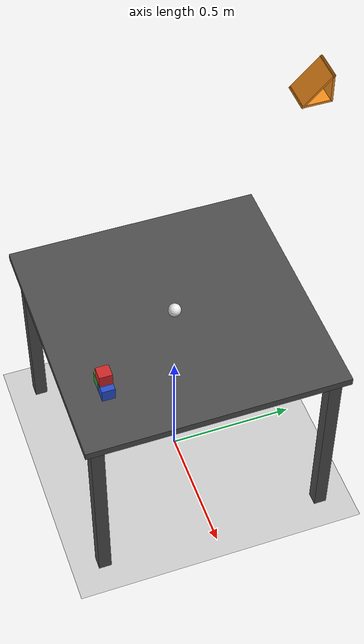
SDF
<?xml version="1.0" ?>
<sdf version="1.6">
  <world name="ur10e_station">

    <include><uri>model://sun</uri></include>
    <include><uri>model://ground_plane</uri></include>

    <plugin name="gazebo_ros_state" filename="libgazebo_ros_state.so">
      <ros>
        <namespace>/gazebo</namespace>
      </ros>
      <update_rate>20.0</update_rate>
    </plugin>

    <model name="table">
      <static>true</static>
      <pose>0 0 0 0 0 0</pose>
      <link name="link">

        <collision name="top_col">
          <pose>0 0 0.785 0 0 0</pose>
          <geometry><box><size>1.0 1.0 0.03</size></box></geometry>
        </collision>
        <visual name="top_vis">
          <pose>0 0 0.785 0 0 0</pose>
          <geometry><box><size>1.0 1.0 0.03</size></box></geometry>
          <material><script><uri>file://media/materials/scripts/gazebo.material</uri><name>Gazebo/DarkGrey</name></script></material>
        </visual>

        <collision name="leg1_col"><pose>0.45 0.45 0.385 0 0 0</pose><geometry><box><size>0.05 0.05 0.77</size></box></geometry></collision>
        <visual name="leg1_vis"><pose>0.45 0.45 0.385 0 0 0</pose><geometry><box><size>0.05 0.05 0.77</size></box></geometry><material><script><uri>file://media/materials/scripts/gazebo.material</uri><name>Gazebo/DarkGrey</name></script></material></visual>

        <collision name="leg2_col"><pose>-0.45 0.45 0.385 0 0 0</pose><geometry><box><size>0.05 0.05 0.77</size></box></geometry></collision>
        <visual name="leg2_vis"><pose>-0.45 0.45 0.385 0 0 0</pose><geometry><box><size>0.05 0.05 0.77</size></box></geometry><material><script><uri>file://media/materials/scripts/gazebo.material</uri><name>Gazebo/DarkGrey</name></script></material></visual>

        <collision name="leg3_col"><pose>0.45 -0.45 0.385 0 0 0</pose><geometry><box><size>0.05 0.05 0.77</size></box></geometry></collision>
        <visual name="leg3_vis"><pose>0.45 -0.45 0.385 0 0 0</pose><geometry><box><size>0.05 0.05 0.77</size></box></geometry><material><script><uri>file://media/materials/scripts/gazebo.material</uri><name>Gazebo/DarkGrey</name></script></material></visual>

        <collision name="leg4_col"><pose>-0.45 -0.45 0.385 0 0 0</pose><geometry><box><size>0.05 0.05 0.77</size></box></geometry></collision>
        <visual name="leg4_vis"><pose>-0.45 -0.45 0.385 0 0 0</pose><geometry><box><size>0.05 0.05 0.77</size></box></geometry><material><script><uri>file://media/materials/scripts/gazebo.material</uri><name>Gazebo/DarkGrey</name></script></material></visual>
      </link>
    </model>

    <!-- Small 45-45-90 wedge ramp from 3 flat plates, near +Y table edge opposite the cubes -->
    <model name="ramp">
      <pose>0.25 0.4 1.95 0 0 0</pose>
      <link name="link">
        <inertial>
          <mass>10.0</mass>
          <pose>0 -0.04 0.03 0 0 0</pose>
          <inertia>
            <ixx>0.15</ixx><ixy>0</ixy><ixz>0</ixz>
            <iyy>0.08</iyy><iyz>0</iyz>
            <izz>0.18</izz>
          </inertia>
        </inertial>

        <!-- Horizontal leg of the right triangle -->
        <collision name="base_col">
          <pose>0 -0.05 0.004 0 0 0</pose>
          <geometry><box><size>0.10 0.10 0.008</size></box></geometry>
          <surface>
            <friction><ode><mu>0.3</mu><mu2>0.3</mu2></ode></friction>
            <contact>
              <ode><kp>100000.0</kp><kd>100.0</kd><max_vel>0.0</max_vel><min_depth>0.001</min_depth></ode>
            </contact>
          </surface>
        </collision>
        <visual name="base_vis">
          <pose>0 -0.05 0.004 0 0 0</pose>
          <geometry><box><size>0.10 0.10 0.008</size></box></geometry>
          <material><script><uri>file://media/materials/scripts/gazebo.material</uri><name>Gazebo/Orange</name></script></material>
        </visual>

        <!-- Vertical leg of the right triangle -->
        <collision name="back_col">
          <pose>0 -0.004 0.05 0 0 0</pose>
          <geometry><box><size>0.10 0.008 0.10</size></box></geometry>
          <surface>
            <friction><ode><mu>0.3</mu><mu2>0.3</mu2></ode></friction>
            <contact>
              <ode><kp>100000.0</kp><kd>100.0</kd><max_vel>0.0</max_vel><min_depth>0.001</min_depth></ode>
            </contact>
          </surface>
        </collision>
        <visual name="back_vis">
          <pose>0 -0.004 0.05 0 0 0</pose>
          <geometry><box><size>0.10 0.008 0.10</size></box></geometry>
          <material><script><uri>file://media/materials/scripts/gazebo.material</uri><name>Gazebo/Orange</name></script></material>
        </visual>

        <!-- Hypotenuse: the 45° ramp surface -->
        <collision name="slope_col">
          <pose>0 -0.05 0.05 0.785398 0 0</pose>
          <geometry><box><size>0.10 0.14142 0.008</size></box></geometry>
          <surface>
            <friction><ode><mu>0.2</mu><mu2>0.2</mu2></ode></friction>
            <contact>
              <ode><kp>100000.0</kp><kd>100.0</kd><max_vel>0.0</max_vel><min_depth>0.001</min_depth></ode>
            </contact>
          </surface>
        </collision>
        <visual name="slope_vis">
          <pose>0 -0.05 0.05 0.785398 0 0</pose>
          <geometry><box><size>0.10 0.14142 0.008</size></box></geometry>
          <material><script><uri>file://media/materials/scripts/gazebo.material</uri><name>Gazebo/Orange</name></script></material>
        </visual>
      </link>
    </model>

    <!-- Medium ball in the middle of the table (diameter ≈ cube size) -->
    <model name="ball">
      <pose>0.0 0.0 0.825 0 0 0</pose>
      <link name="link">
        <inertial>
          <mass>1.0</mass>
          <inertia>
            <ixx>3.0e-5</ixx><ixy>0</ixy><ixz>0</ixz>
            <iyy>3.0e-5</iyy><iyz>0</iyz>
            <izz>3.0e-5</izz>
          </inertia>
        </inertial>
        <collision name="collision">
          <geometry><sphere><radius>0.025</radius></sphere></geometry>
          <surface>
            <friction><ode><mu>0.4</mu><mu2>0.4</mu2></ode></friction>
            <contact>
              <ode><kp>10000.0</kp><kd>1.0</kd><max_vel>5.0</max_vel><min_depth>0.001</min_depth></ode>
            </contact>
          </surface>
        </collision>
        <visual name="visual">
          <geometry><sphere><radius>0.025</radius></sphere></geometry>
          <material><script><uri>file://media/materials/scripts/gazebo.material</uri><name>Gazebo/White</name></script></material>
        </visual>
      </link>
    </model>

    <!-- Light 3-cube pyramid on the right (-Y) of the manipulator -->
    <model name="pyramid_cube_1">
      <pose>0.225 -0.35 0.825 0 0 0</pose>
      <link name="link">
        <inertial>
          <mass>0.015</mass>
          <inertia>
            <ixx>6.25e-6</ixx><ixy>0</ixy><ixz>0</ixz>
            <iyy>6.25e-6</iyy><iyz>0</iyz>
            <izz>6.25e-6</izz>
          </inertia>
        </inertial>
        <collision name="collision">
          <geometry><box><size>0.05 0.05 0.05</size></box></geometry>
          <surface>
            <friction><ode><mu>0.6</mu><mu2>0.6</mu2></ode></friction>
            <contact>
              <ode><kp>10000.0</kp><kd>10.0</kd><max_vel>0.0</max_vel><min_depth>0.002</min_depth></ode>
            </contact>
          </surface>
        </collision>
        <visual name="visual">
          <geometry><box><size>0.05 0.05 0.05</size></box></geometry>
          <material><script><uri>file://media/materials/scripts/gazebo.material</uri><name>Gazebo/Green</name></script></material>
        </visual>
      </link>
    </model>

    <model name="pyramid_cube_2">
      <pose>0.275 -0.35 0.825 0 0 0</pose>
      <link name="link">
        <inertial>
          <mass>0.015</mass>
          <inertia>
            <ixx>6.25e-6</ixx><ixy>0</ixy><ixz>0</ixz>
            <iyy>6.25e-6</iyy><iyz>0</iyz>
            <izz>6.25e-6</izz>
          </inertia>
        </inertial>
        <collision name="collision">
          <geometry><box><size>0.05 0.05 0.05</size></box></geometry>
          <surface>
            <friction><ode><mu>0.6</mu><mu2>0.6</mu2></ode></friction>
            <contact>
              <ode><kp>10000.0</kp><kd>10.0</kd><max_vel>0.0</max_vel><min_depth>0.002</min_depth></ode>
            </contact>
          </surface>
        </collision>
        <visual name="visual">
          <geometry><box><size>0.05 0.05 0.05</size></box></geometry>
          <material><script><uri>file://media/materials/scripts/gazebo.material</uri><name>Gazebo/Blue</name></script></material>
        </visual>
      </link>
    </model>

    <model name="pyramid_cube_3">
      <pose>0.25 -0.35 0.875 0 0 0</pose>
      <link name="link">
        <inertial>
          <mass>0.015</mass>
          <inertia>
            <ixx>6.25e-6</ixx><ixy>0</ixy><ixz>0</ixz>
            <iyy>6.25e-6</iyy><iyz>0</iyz>
            <izz>6.25e-6</izz>
          </inertia>
        </inertial>
        <collision name="collision">
          <geometry><box><size>0.05 0.05 0.05</size></box></geometry>
          <surface>
            <friction><ode><mu>0.6</mu><mu2>0.6</mu2></ode></friction>
            <contact>
              <ode><kp>10000.0</kp><kd>10.0</kd><max_vel>0.0</max_vel><min_depth>0.002</min_depth></ode>
            </contact>
          </surface>
        </collision>
        <visual name="visual">
          <geometry><box><size>0.05 0.05 0.05</size></box></geometry>
          <material><script><uri>file://media/materials/scripts/gazebo.material</uri><name>Gazebo/Red</name></script></material>
        </visual>
      </link>
    </model>

  </world>
</sdf>
